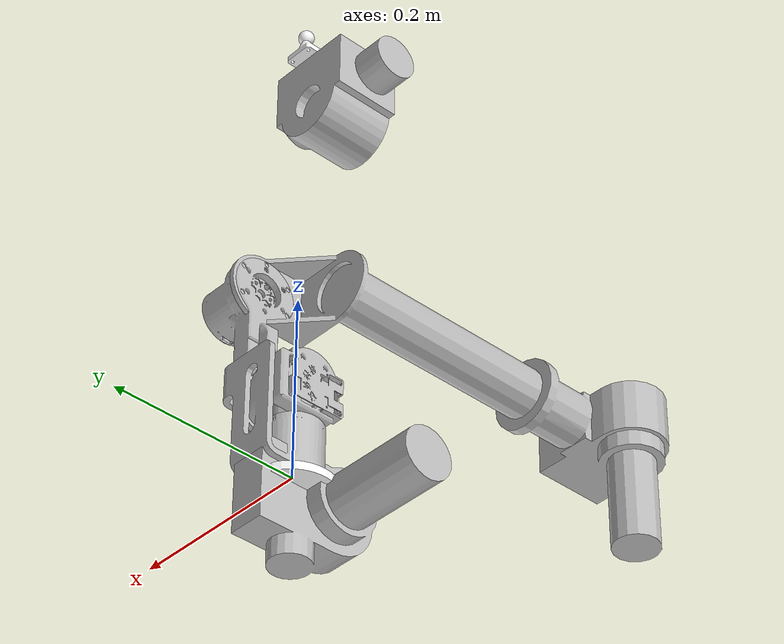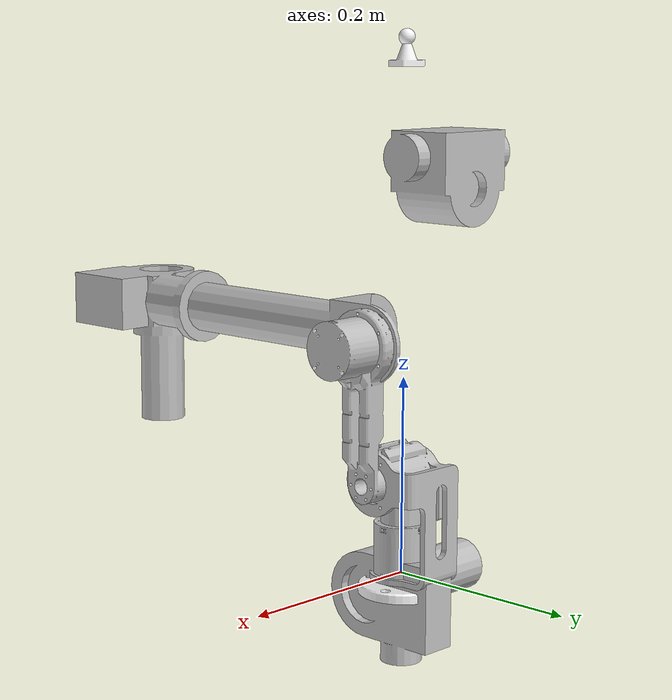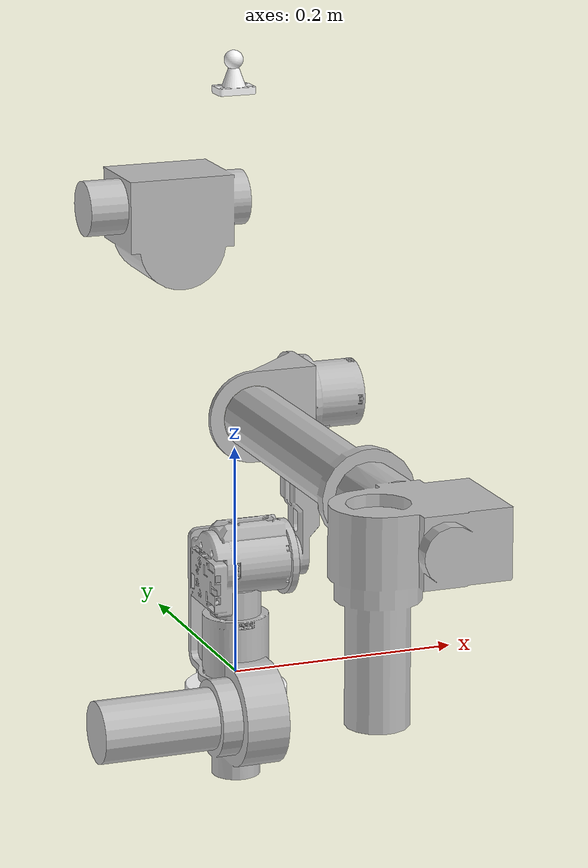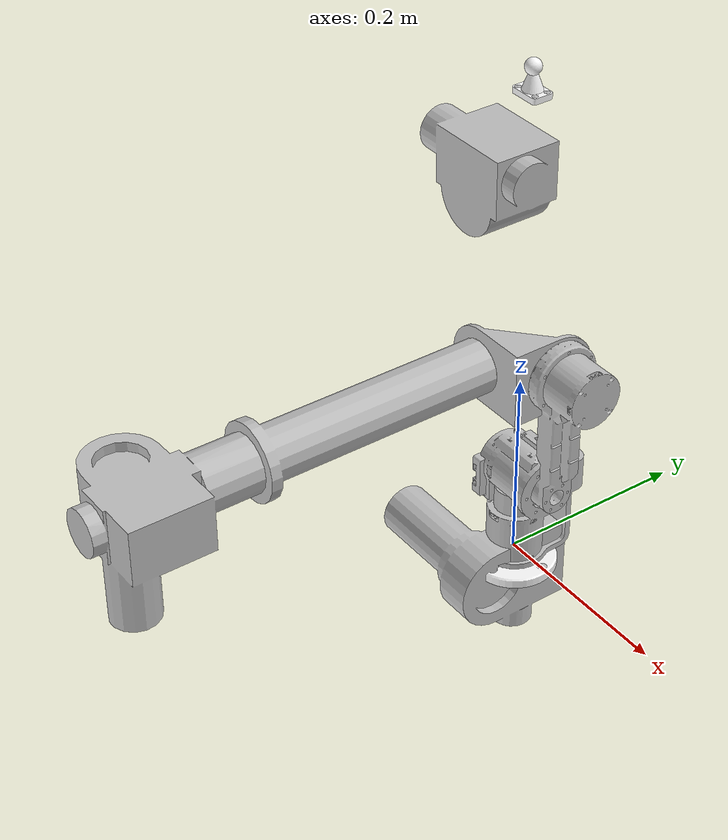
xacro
<?xml version="1.0"?>
<robot xmlns:xacro="http://www.ros.org/wiki/xacro" name="mini1">
    <xacro:arg name="initial_positions_file" default="initial_positions.yaml" />

    <!-- Import mini1 urdf file -->
    <xacro:include filename="$(find arm_description)/urdf/miniarm.urdf" />

    <!-- Import control_xacro -->
    <xacro:include filename="mini1.ros2_control.xacro" />

    <xacro:mini1_ros2_control name="FakeSystem" initial_positions_file="$(arg initial_positions_file)"/>

</robot>

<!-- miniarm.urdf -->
<robot
  name="mini1">
  <link
    name="base_link">
    <inertial>
      <origin
        xyz="1.9762E-15 2.3176E-15 0.014059"
        rpy="3.1415926535 0 0" />
      <mass
        value="0.0619431" />
      <inertia
        ixx="2.9645E-05"
        ixy="0"
        ixz="0"
        iyy="2.9645E-05"
        iyz="0"
        izz="5.7155E-05" />
    </inertial>
    <visual>
      <origin
        xyz="0 0 0"
        rpy="3.1415926535 0 0" />
      <geometry>
        <mesh
          filename="package://arm_description/meshes/base_link.STL" />
      </geometry>
      <material
        name="">
        <color
          rgba="1 1 1 1" />
      </material>
    </visual>
    <collision>
      <origin
        xyz="0 0 0"
        rpy="3.1415926535 0 0" />
      <geometry>
        <mesh
          filename="package://arm_description/meshes/base_link.STL" />
      </geometry>
    </collision>
  </link>
  <link
    name="link1">
    <inertial>
      <origin
        xyz="0.009526 -0.018612 -0.05946"
        rpy="0 0 0" />
      <mass
        value="1.281922" />
      <inertia
        ixx="0.0029041"
        ixy="-4.89E-05"
        ixz="0.0004728"
        iyy="0.0026898"
        iyz="2.42E-05"
        izz="0.001064" />
    </inertial>
    <visual>
      <origin
        xyz="0 0 0"
        rpy="0 0 0" />
      <geometry>
        <mesh
          filename="package://arm_description/meshes/link1.STL" />
      </geometry>
      <material
        name="">
        <color
          rgba="0.75294 0.75294 0.75294 1" />
      </material>
    </visual>
    <collision>
      <origin
        xyz="0 0 0"
        rpy="0 0 0" />
      <geometry>
        <mesh
          filename="package://arm_description/meshes/link1.STL" />
      </geometry>
    </collision>
  </link>
  <joint
    name="joint1"
    type="revolute">
    <origin
      xyz="0 0 0"
      rpy="3.1415926535 0 0" />
    <parent
      link="base_link" />
    <child
      link="link1" />
    <axis
      xyz="0 0 -1" />
    <limit
      lower="-3.1415926535"
      upper="3.1415926535"
      effort="9.0"
      velocity="18.0" />
  </joint>
  <link
    name="link2">
    <inertial>
      <origin
        xyz="0.095882 -2.8714E-05 0.022099"
        rpy="0 0 0" />
      <mass
        value="0.6490414" />
      <inertia
        ixx="0.0001875"
        ixy="1E-06"
        ixz="-0.000202"
        iyy="0.001536"
        iyz="6E-07"
        izz="0.0015362" />
    </inertial>
    <visual>
      <origin
        xyz="0 0 0"
        rpy="0 0 0" />
      <geometry>
        <mesh
          filename="package://arm_description/meshes/link2.STL" />
      </geometry>
      <material
        name="">
        <color
          rgba="0.75294 0.75294 0.75294 1" />
      </material>
    </visual>
    <collision>
      <origin
        xyz="0 0 0"
        rpy="0 0 0" />
      <geometry>
        <mesh
          filename="package://arm_description/meshes/link2.STL" />
      </geometry>
    </collision>
  </link>
  <joint
    name="joint2"
    type="revolute">
    <origin
      xyz="0.04155 0 -0.09955"
      rpy="0 1.5708 0" />
    <parent
      link="link1" />
    <child
      link="link2" />
    <axis
      xyz="0 0 -1" />
    <limit
      lower="-1.1570796"
      upper="1.1570796"
      effort="9.0"
      velocity="18.0" />
  </joint>
  <link
    name="link3">
    <inertial>
      <origin
        xyz="0.017873 0.0064591 0.042102"
        rpy="0 0 0" />
      <mass
        value="0.6418803" />
      <inertia
        ixx="0.0005684"
        ixy="0.0001154"
        ixz="5.35E-05"
        iyy="0.0005702"
        iyz="-7.75E-05"
        izz="0.0006002" />
    </inertial>
    <visual>
      <origin
        xyz="0 0 0"
        rpy="0 0 0" />
      <geometry>
        <mesh
          filename="package://arm_description/meshes/link3.STL" />
      </geometry>
      <material
        name="">
        <color
          rgba="0.75294 0.75294 0.75294 1" />
      </material>
    </visual>
    <collision>
      <origin
        xyz="0 0 0"
        rpy="0 0 0" />
      <geometry>
        <mesh
          filename="package://arm_description/meshes/link3.STL" />
      </geometry>
    </collision>
  </link>
  <joint
    name="joint3"
    type="revolute">
    <origin
      xyz="0.14 0 0.01245"
      rpy="3.1416 0 1.5708" />
    <parent
      link="link2" />
    <child
      link="link3" />
    <axis
      xyz="0 0 -1" />
    <limit
      lower="-0.785398"
      upper="1.1570796"
      effort="9.0"
      velocity="18.0" />
  </joint>
  <link
    name="link4">
    <inertial>
      <origin
        xyz="0.00010149 -0.00081877 0.13234"
        rpy="0 0 0" />
      <mass
        value="0.4931137" />
      <inertia
        ixx="0.0010794"
        ixy="-6E-07"
        ixz="2.3E-06"
        iyy="0.0010191"
        iyz="-5.29E-05"
        izz="0.0002491" />
    </inertial>
    <visual>
      <origin
        xyz="0 0 0"
        rpy="0 0 0" />
      <geometry>
        <mesh
          filename="package://arm_description/meshes/link4.STL" />
      </geometry>
      <material
        name="">
        <color
          rgba="0.75294 0.75294 0.75294 1" />
      </material>
    </visual>
    <collision>
      <origin
        xyz="0 0 0"
        rpy="0 0 0" />
      <geometry>
        <mesh
          filename="package://arm_description/meshes/link4.STL" />
      </geometry>
    </collision>
  </link>
  <joint
    name="joint4"
    type="revolute">
    <origin
      xyz="0 0.012 0.054"
      rpy="1.5708 0 3.1416" />
    <parent
      link="link3" />
    <child
      link="link4" />
    <axis
      xyz="0 0 -1" />
    <limit
      lower="-3.1415926535"
      upper="3.1415926535"
      effort="3.5"
      velocity="18.0" />
  </joint>
  <link
    name="link5">
    <inertial>
      <origin
        xyz="2.723E-05 0.039361 0.007802"
        rpy="0 0 0" />
      <mass
        value="0.4978364" />
      <inertia
        ixx="0.000481"
        ixy="1E-07"
        ixz="1E-07"
        iyy="0.0002856"
        iyz="0.0001376"
        izz="0.0003811" />
    </inertial>
    <visual>
      <origin
        xyz="0 0 0"
        rpy="0 0 0" />
      <geometry>
        <mesh
          filename="package://arm_description/meshes/link5.STL" />
      </geometry>
      <material
        name="">
        <color
          rgba="0.75294 0.75294 0.75294 1" />
      </material>
    </visual>
    <collision>
      <origin
        xyz="0 0 0"
        rpy="0 0 0" />
      <geometry>
        <mesh
          filename="package://arm_description/meshes/link5.STL" />
      </geometry>
    </collision>
  </link>
  <joint
    name="joint5"
    type="revolute">
    <origin
      xyz="0 -0.007 0.165"
      rpy="1.5708 0 0" />
    <parent
      link="link4" />
    <child
      link="link5" />
    <axis
      xyz="0 0 -1" />
    <limit
      lower="-2.356194"
      upper="2.356194"
      effort="3.5"
      velocity="18.0" />
  </joint>
  <link
    name="link6">
    <inertial>
      <origin
        xyz="-1.7208E-15 -6.9611E-16 0.011978"
        rpy="0 0 0" />
      <mass
        value="1.02E-06" />
      <inertia
        ixx="1.3E-06"
        ixy="0"
        ixz="0"
        iyy="1.20E-06"
        iyz="0"
        izz="6E-07" />
    </inertial>
    <visual>
      <origin
        xyz="0 0 0"
        rpy="0 0 0" />
      <geometry>
        <mesh
          filename="package://arm_description/meshes/link6.STL" />
      </geometry>
      <material
        name="">
        <color
          rgba="1 1 1 1" />
      </material>
    </visual>
    <collision>
      <origin
        xyz="0 0 0"
        rpy="0 0 0" />
      <geometry>
        <mesh
          filename="package://arm_description/meshes/link6.STL" />
      </geometry>
    </collision>
  </link>
  <joint
    name="joint6"
    type="revolute">
    <origin
      xyz="0 0.0875 -0.007"
      rpy="-1.5708 0 0" />
    <parent
      link="link5" />
    <child
      link="link6" />
    <axis
      xyz="0 0 -1" />
    <limit
      lower="-3.1415926535"
      upper="3.1415926535"
      effort="3.5"
      velocity="18.0" />
  </joint>
</robot>
